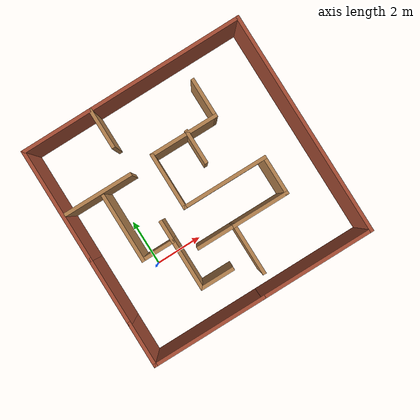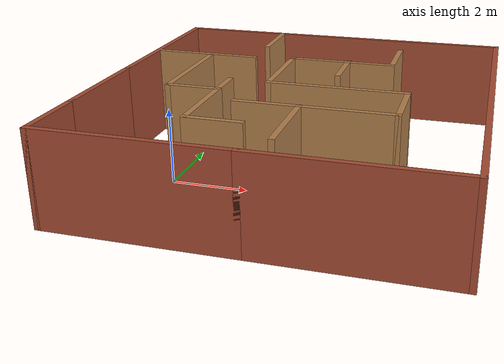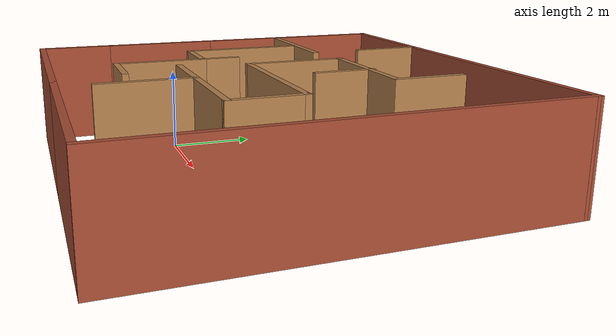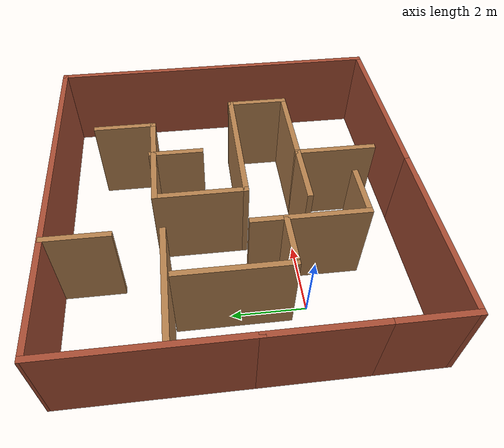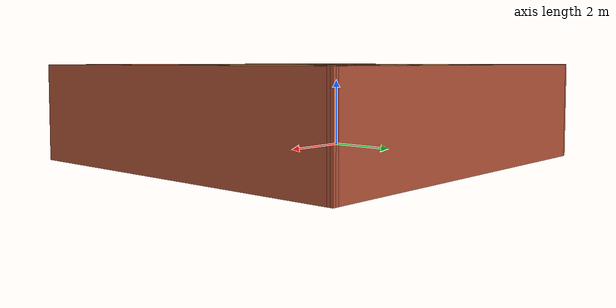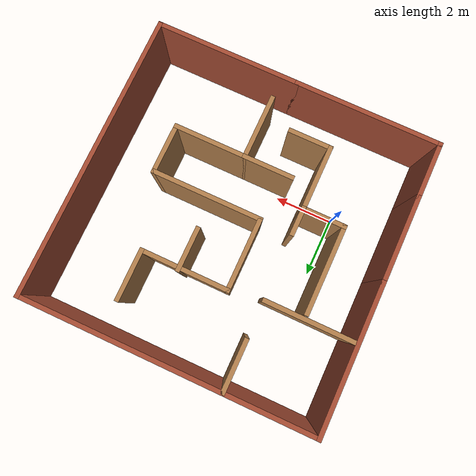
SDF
<?xml version='1.0'?>
<sdf version='1.6'>
  <model name='Acme_Floor'>
    <pose frame=''>2.93 1.68019 0 0 -0 0</pose>
    <link name='Wall_0'>
      <collision name='Wall_0_Collision'>
        <geometry>
          <box>
            <size>5 0.15 2.5</size>
          </box>
        </geometry>
        <pose frame=''>0 0 1.25 0 -0 0</pose>
      </collision>
      <visual name='Wall_0_Visual'>
        <pose frame=''>0 0 1.25 0 -0 0</pose>
        <geometry>
          <box>
            <size>5 0.15 2.5</size>
          </box>
        </geometry>
        <material>
          <script>
            <uri>file://media/materials/scripts/gazebo.material</uri>
            <name>Gazebo/Bricks</name>
          </script>
          <ambient>1 1 1 1</ambient>
        </material>
        <meta>
          <layer>0</layer>
        </meta>
      </visual>
      <pose frame=''>-2.425 -4.80019 0 0 -0 0</pose>
    </link>
    <link name='Wall_10'>
      <collision name='Wall_10_Collision'>
        <geometry>
          <box>
            <size>3 0.15 2.5</size>
          </box>
        </geometry>
        <pose frame=''>0 0 1.25 0 -0 0</pose>
      </collision>
      <visual name='Wall_10_Visual'>
        <pose frame=''>0 0 1.25 0 -0 0</pose>
        <geometry>
          <box>
            <size>3 0.15 2.5</size>
          </box>
        </geometry>
        <material>
          <script>
            <uri>file://media/materials/scripts/gazebo.material</uri>
            <name>Gazebo/Bricks</name>
          </script>
          <ambient>1 1 1 1</ambient>
        </material>
        <meta>
          <layer>0</layer>
        </meta>
      </visual>
      <pose frame=''>-4.85 -1.52519 0 0 -0 1.5708</pose>
    </link>
    <link name='Wall_14'>
      <collision name='Wall_14_Collision'>
        <geometry>
          <box>
            <size>5 0.15 2.5</size>
          </box>
        </geometry>
        <pose frame=''>0 0 1.25 0 -0 0</pose>
      </collision>
      <visual name='Wall_14_Visual'>
        <pose frame=''>0 0 1.25 0 -0 0</pose>
        <geometry>
          <box>
            <size>5 0.15 2.5</size>
          </box>
        </geometry>
        <material>
          <script>
            <uri>file://media/materials/scripts/gazebo.material</uri>
            <name>Gazebo/Bricks</name>
          </script>
          <ambient>1 1 1 1</ambient>
        </material>
        <meta>
          <layer>0</layer>
        </meta>
      </visual>
      <pose frame=''>-4.85 2.32481 0 0 -0 1.5708</pose>
    </link>
    <link name='Wall_18'>
      <collision name='Wall_18_Collision'>
        <geometry>
          <box>
            <size>9.75 0.15 2.5</size>
          </box>
        </geometry>
        <pose frame=''>0 0 1.25 0 -0 0</pose>
      </collision>
      <visual name='Wall_18_Visual'>
        <pose frame=''>0 0 1.25 0 -0 0</pose>
        <geometry>
          <box>
            <size>9.75 0.15 2.5</size>
          </box>
        </geometry>
        <material>
          <script>
            <uri>file://media/materials/scripts/gazebo.material</uri>
            <name>Gazebo/Bricks</name>
          </script>
          <ambient>1 1 1 1</ambient>
        </material>
        <meta>
          <layer>0</layer>
        </meta>
      </visual>
      <pose frame=''>4.85 -0.000193 0 0 -0 1.5708</pose>
    </link>
    <link name='Wall_19'>
      <collision name='Wall_19_Collision'>
        <geometry>
          <box>
            <size>9.85013 0.15 2.5</size>
          </box>
        </geometry>
        <pose frame=''>0 0 1.25 0 -0 0</pose>
      </collision>
      <visual name='Wall_19_Visual'>
        <pose frame=''>0 0 1.25 0 -0 0</pose>
        <geometry>
          <box>
            <size>9.85013 0.15 2.5</size>
          </box>
        </geometry>
        <material>
          <script>
            <uri>file://media/materials/scripts/gazebo.material</uri>
            <name>Gazebo/Bricks</name>
          </script>
          <ambient>1 1 1 1</ambient>
        </material>
        <meta>
          <layer>0</layer>
        </meta>
      </visual>
      <pose frame=''>0 4.77481 0 0 0 -3.13644</pose>
    </link>
    <link name='Wall_21'>
      <collision name='Wall_21_Collision'>
        <geometry>
          <box>
            <size>3 0.15 2.5</size>
          </box>
        </geometry>
        <pose frame=''>0 0 1.25 0 -0 0</pose>
      </collision>
      <visual name='Wall_21_Visual'>
        <pose frame=''>0 0 1.25 0 -0 0</pose>
        <geometry>
          <box>
            <size>3 0.15 2.5</size>
          </box>
        </geometry>
        <material>
          <script>
            <uri>file://media/materials/scripts/gazebo.material</uri>
            <name>Gazebo/Wood</name>
          </script>
          <ambient>1 0.764706 0.305882 1</ambient>
        </material>
        <meta>
          <layer>0</layer>
        </meta>
      </visual>
      <pose frame=''>-3.28531 1.86574 0 0 -0 0</pose>
    </link>
    <link name='Wall_23'>
      <collision name='Wall_23_Collision'>
        <geometry>
          <box>
            <size>1.75 0.15 2.5</size>
          </box>
        </geometry>
        <pose frame=''>0 0 1.25 0 -0 0</pose>
      </collision>
      <visual name='Wall_23_Visual'>
        <pose frame=''>0 0 1.25 0 -0 0</pose>
        <geometry>
          <box>
            <size>1.75 0.15 2.5</size>
          </box>
        </geometry>
        <material>
          <script>
            <uri>file://media/materials/scripts/gazebo.material</uri>
            <name>Gazebo/Wood</name>
          </script>
          <ambient>1 0.764706 0.305882 1</ambient>
        </material>
        <meta>
          <layer>0</layer>
        </meta>
      </visual>
      <pose frame=''>-1.83819 3.93809 0 0 0 -1.5708</pose>
    </link>
    <link name='Wall_26'>
      <collision name='Wall_26_Collision'>
        <geometry>
          <box>
            <size>2.5 0.15 2.5</size>
          </box>
        </geometry>
        <pose frame=''>0 0 1.25 0 -0 0</pose>
      </collision>
      <visual name='Wall_26_Visual'>
        <pose frame=''>0 0 1.25 0 -0 0</pose>
        <geometry>
          <box>
            <size>2.5 0.15 2.5</size>
          </box>
        </geometry>
        <material>
          <script>
            <uri>file://media/materials/scripts/gazebo.material</uri>
            <name>Gazebo/Wood</name>
          </script>
          <ambient>1 0.764706 0.305882 1</ambient>
        </material>
        <meta>
          <layer>0</layer>
        </meta>
      </visual>
      <pose frame=''>1.68782 -1.89996 0 0 -0 0</pose>
    </link>
    <link name='Wall_27'>
      <collision name='Wall_27_Collision'>
        <geometry>
          <box>
            <size>1.75 0.15 2.5</size>
          </box>
        </geometry>
        <pose frame=''>0 0 1.25 0 -0 0</pose>
      </collision>
      <visual name='Wall_27_Visual'>
        <pose frame=''>0 0 1.25 0 -0 0</pose>
        <geometry>
          <box>
            <size>1.75 0.15 2.5</size>
          </box>
        </geometry>
        <material>
          <script>
            <uri>file://media/materials/scripts/gazebo.material</uri>
            <name>Gazebo/Wood</name>
          </script>
          <ambient>1 0.764706 0.305882 1</ambient>
        </material>
        <meta>
          <layer>0</layer>
        </meta>
      </visual>
      <pose frame=''>2.86282 -1.09996 0 0 -0 1.5708</pose>
    </link>
    <link name='Wall_28'>
      <collision name='Wall_28_Collision'>
        <geometry>
          <box>
            <size>3.75 0.15 2.5</size>
          </box>
        </geometry>
        <pose frame=''>0 0 1.25 0 -0 0</pose>
      </collision>
      <visual name='Wall_28_Visual'>
        <pose frame=''>0 0 1.25 0 -0 0</pose>
        <geometry>
          <box>
            <size>3.75 0.15 2.5</size>
          </box>
        </geometry>
        <material>
          <script>
            <uri>file://media/materials/scripts/gazebo.material</uri>
            <name>Gazebo/Wood</name>
          </script>
          <ambient>1 0.764706 0.305882 1</ambient>
        </material>
        <meta>
          <layer>0</layer>
        </meta>
      </visual>
      <pose frame=''>1.06282 -0.299957 0 0 -0 3.14159</pose>
    </link>
    <link name='Wall_29'>
      <collision name='Wall_29_Collision'>
        <geometry>
          <box>
            <size>2.5 0.15 2.5</size>
          </box>
        </geometry>
        <pose frame=''>0 0 1.25 0 -0 0</pose>
      </collision>
      <visual name='Wall_29_Visual'>
        <pose frame=''>0 0 1.25 0 -0 0</pose>
        <geometry>
          <box>
            <size>2.5 0.15 2.5</size>
          </box>
        </geometry>
        <material>
          <script>
            <uri>file://media/materials/scripts/gazebo.material</uri>
            <name>Gazebo/Wood</name>
          </script>
          <ambient>1 0.764706 0.305882 1</ambient>
        </material>
        <meta>
          <layer>0</layer>
        </meta>
      </visual>
      <pose frame=''>-0.73718 0.875043 0 0 -0 1.5708</pose>
    </link>
    <link name='Wall_30'>
      <collision name='Wall_30_Collision'>
        <geometry>
          <box>
            <size>3 0.15 2.5</size>
          </box>
        </geometry>
        <pose frame=''>0 0 1.25 0 -0 0</pose>
      </collision>
      <visual name='Wall_30_Visual'>
        <pose frame=''>0 0 1.25 0 -0 0</pose>
        <geometry>
          <box>
            <size>3 0.15 2.5</size>
          </box>
        </geometry>
        <material>
          <script>
            <uri>file://media/materials/scripts/gazebo.material</uri>
            <name>Gazebo/Wood</name>
          </script>
          <ambient>1 0.764706 0.305882 1</ambient>
        </material>
        <meta>
          <layer>0</layer>
        </meta>
      </visual>
      <pose frame=''>0.68782 2.05004 0 0 -0 0</pose>
    </link>
    <link name='Wall_31'>
      <collision name='Wall_31_Collision'>
        <geometry>
          <box>
            <size>1.75 0.15 2.5</size>
          </box>
        </geometry>
        <pose frame=''>0 0 1.25 0 -0 0</pose>
      </collision>
      <visual name='Wall_31_Visual'>
        <pose frame=''>0 0 1.25 0 -0 0</pose>
        <geometry>
          <box>
            <size>1.75 0.15 2.5</size>
          </box>
        </geometry>
        <material>
          <script>
            <uri>file://media/materials/scripts/gazebo.material</uri>
            <name>Gazebo/Wood</name>
          </script>
          <ambient>1 1 1 1</ambient>
        </material>
        <meta>
          <layer>0</layer>
        </meta>
      </visual>
      <pose frame=''>2.11282 2.85004 0 0 -0 1.5708</pose>
    </link>
    <link name='Wall_33'>
      <collision name='Wall_33_Collision'>
        <geometry>
          <box>
            <size>1.5 0.15 2.5</size>
          </box>
        </geometry>
        <pose frame=''>0 0 1.25 0 -0 0</pose>
      </collision>
      <visual name='Wall_33_Visual'>
        <pose frame=''>0 0 1.25 0 -0 0</pose>
        <geometry>
          <box>
            <size>1.5 0.15 2.5</size>
          </box>
        </geometry>
        <material>
          <script>
            <uri>file://media/materials/scripts/gazebo.material</uri>
            <name>Gazebo/Wood</name>
          </script>
          <ambient>1 0.764706 0.305882 1</ambient>
        </material>
        <meta>
          <layer>0</layer>
        </meta>
      </visual>
      <pose frame=''>0.864607 1.4349 0 0 0 -1.5708</pose>
    </link>
    <link name='Wall_35'>
      <collision name='Wall_35_Collision'>
        <geometry>
          <box>
            <size>3 0.15 2.5</size>
          </box>
        </geometry>
        <pose frame=''>0 0 1.25 0 -0 0</pose>
      </collision>
      <visual name='Wall_35_Visual'>
        <pose frame=''>0 0 1.25 0 -0 0</pose>
        <geometry>
          <box>
            <size>3 0.15 2.5</size>
          </box>
        </geometry>
        <material>
          <script>
            <uri>file://media/materials/scripts/gazebo.material</uri>
            <name>Gazebo/Wood</name>
          </script>
          <ambient>1 0.764706 0.305882 1</ambient>
        </material>
        <meta>
          <layer>0</layer>
        </meta>
      </visual>
      <pose frame=''>-3.14577 0.262757 0 0 0 -1.5708</pose>
    </link>
    <link name='Wall_36'>
      <collision name='Wall_36_Collision'>
        <geometry>
          <box>
            <size>1.5 0.15 2.5</size>
          </box>
        </geometry>
        <pose frame=''>0 0 1.25 0 -0 0</pose>
      </collision>
      <visual name='Wall_36_Visual'>
        <pose frame=''>0 0 1.25 0 -0 0</pose>
        <geometry>
          <box>
            <size>1.5 0.15 2.5</size>
          </box>
        </geometry>
        <material>
          <script>
            <uri>file://media/materials/scripts/gazebo.material</uri>
            <name>Gazebo/Wood</name>
          </script>
          <ambient>1 1 1 1</ambient>
        </material>
        <meta>
          <layer>0</layer>
        </meta>
      </visual>
      <pose frame=''>-2.47077 -1.16224 0 0 -0 0</pose>
    </link>
    <link name='Wall_37'>
      <collision name='Wall_37_Collision'>
        <geometry>
          <box>
            <size>1 0.15 2.5</size>
          </box>
        </geometry>
        <pose frame=''>0 0 1.25 0 -0 0</pose>
      </collision>
      <visual name='Wall_37_Visual'>
        <pose frame=''>0 0 1.25 0 -0 0</pose>
        <geometry>
          <box>
            <size>1 0.15 2.5</size>
          </box>
        </geometry>
        <material>
          <script>
            <uri>file://media/materials/scripts/gazebo.material</uri>
            <name>Gazebo/Wood</name>
          </script>
          <ambient>1 0.764706 0.305882 1</ambient>
        </material>
        <meta>
          <layer>0</layer>
        </meta>
      </visual>
      <pose frame=''>-1.79577 -0.737243 0 0 -0 1.5708</pose>
    </link>
    <link name='Wall_39'>
      <collision name='Wall_39_Collision'>
        <geometry>
          <box>
            <size>2.25 0.15 2.5</size>
          </box>
        </geometry>
        <pose frame=''>0 0 1.25 0 -0 0</pose>
      </collision>
      <visual name='Wall_39_Visual'>
        <pose frame=''>0 0 1.25 0 -0 0</pose>
        <geometry>
          <box>
            <size>2.25 0.15 2.5</size>
          </box>
        </geometry>
        <material>
          <script>
            <uri>file://media/materials/scripts/gazebo.material</uri>
            <name>Gazebo/Wood</name>
          </script>
          <ambient>1 0.764706 0.305882 1</ambient>
        </material>
        <meta>
          <layer>0</layer>
        </meta>
      </visual>
      <pose frame=''>-1.79577 -2.21224 0 0 0 -1.5708</pose>
    </link>
    <link name='Wall_40'>
      <collision name='Wall_40_Collision'>
        <geometry>
          <box>
            <size>1.5 0.15 2.5</size>
          </box>
        </geometry>
        <pose frame=''>0 0 1.25 0 -0 0</pose>
      </collision>
      <visual name='Wall_40_Visual'>
        <pose frame=''>0 0 1.25 0 -0 0</pose>
        <geometry>
          <box>
            <size>1.5 0.15 2.5</size>
          </box>
        </geometry>
        <material>
          <script>
            <uri>file://media/materials/scripts/gazebo.material</uri>
            <name>Gazebo/Wood</name>
          </script>
          <ambient>1 0.764706 0.305882 1</ambient>
        </material>
        <meta>
          <layer>0</layer>
        </meta>
      </visual>
      <pose frame=''>-1.12077 -3.26224 0 0 -0 0</pose>
    </link>
    <link name='Wall_42'>
      <collision name='Wall_42_Collision'>
        <geometry>
          <box>
            <size>1.75 0.15 2.5</size>
          </box>
        </geometry>
        <pose frame=''>0 0 1.25 0 -0 0</pose>
      </collision>
      <visual name='Wall_42_Visual'>
        <pose frame=''>0 0 1.25 0 -0 0</pose>
        <geometry>
          <box>
            <size>1.75 0.15 2.5</size>
          </box>
        </geometry>
        <material>
          <script>
            <uri>file://media/materials/scripts/gazebo.material</uri>
            <name>Gazebo/Wood</name>
          </script>
          <ambient>1 0.764706 0.305882 1</ambient>
        </material>
        <meta>
          <layer>0</layer>
        </meta>
      </visual>
      <pose frame=''>-0.28718 -1.89996 0 0 -0 3.14159</pose>
    </link>
    <link name='Wall_44'>
      <collision name='Wall_44_Collision'>
        <geometry>
          <box>
            <size>2.25 0.15 2.5</size>
          </box>
        </geometry>
        <pose frame=''>0 0 1.25 0 -0 0</pose>
      </collision>
      <visual name='Wall_44_Visual'>
        <pose frame=''>0 0 1.25 0 -0 0</pose>
        <geometry>
          <box>
            <size>2.25 0.15 2.5</size>
          </box>
        </geometry>
        <material>
          <script>
            <uri>file://media/materials/scripts/gazebo.material</uri>
            <name>Gazebo/Wood</name>
          </script>
          <ambient>1 0.764706 0.305882 1</ambient>
        </material>
        <meta>
          <layer>0</layer>
        </meta>
      </visual>
      <pose frame=''>0.51282 -2.94996 0 0 0 -1.5708</pose>
    </link>
    <link name='Wall_6'>
      <collision name='Wall_6_Collision'>
        <geometry>
          <box>
            <size>5 0.15 2.5</size>
          </box>
        </geometry>
        <pose frame=''>0 0 1.25 0 -0 0</pose>
      </collision>
      <visual name='Wall_6_Visual'>
        <pose frame=''>0 0 1.25 0 -0 0</pose>
        <geometry>
          <box>
            <size>5 0.15 2.5</size>
          </box>
        </geometry>
        <material>
          <script>
            <uri>file://media/materials/scripts/gazebo.material</uri>
            <name>Gazebo/Bricks</name>
          </script>
          <ambient>1 1 1 1</ambient>
        </material>
        <meta>
          <layer>0</layer>
        </meta>
      </visual>
      <pose frame=''>2.425 -4.80019 0 0 -0 0</pose>
    </link>
    <link name='Wall_8'>
      <collision name='Wall_8_Collision'>
        <geometry>
          <box>
            <size>2 0.15 2.5</size>
          </box>
        </geometry>
        <pose frame=''>0 0 1.25 0 -0 0</pose>
      </collision>
      <visual name='Wall_8_Visual'>
        <pose frame=''>0 0 1.25 0 -0 0</pose>
        <geometry>
          <box>
            <size>2 0.15 2.5</size>
          </box>
        </geometry>
        <material>
          <script>
            <uri>file://media/materials/scripts/gazebo.material</uri>
            <name>Gazebo/Bricks</name>
          </script>
          <ambient>1 1 1 1</ambient>
        </material>
        <meta>
          <layer>0</layer>
        </meta>
      </visual>
      <pose frame=''>-4.85 -3.87519 0 0 -0 1.5708</pose>
    </link>
    <static>1</static>
  </model>
</sdf>
